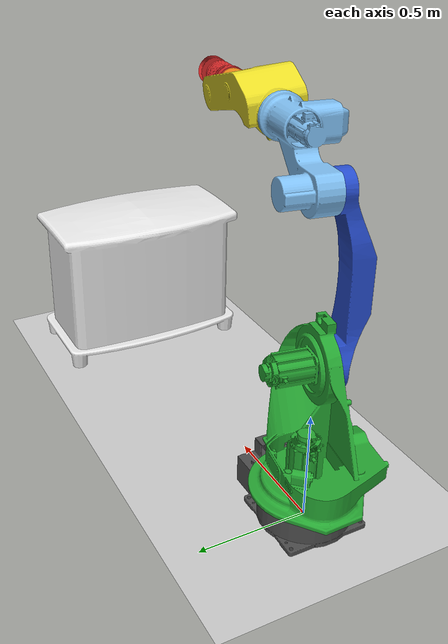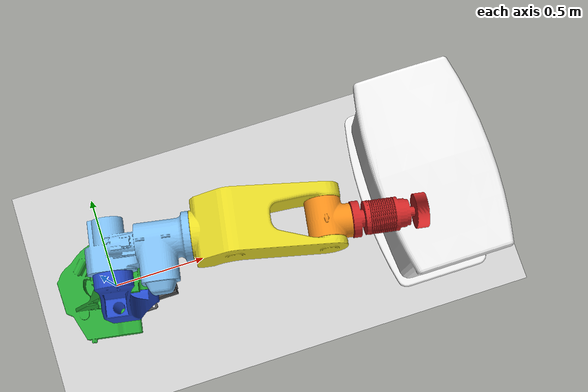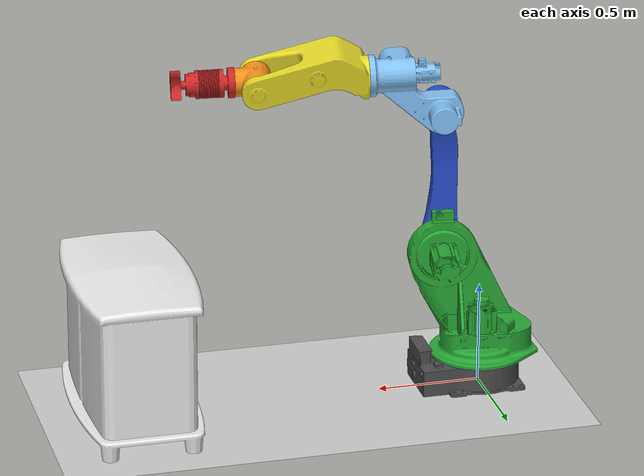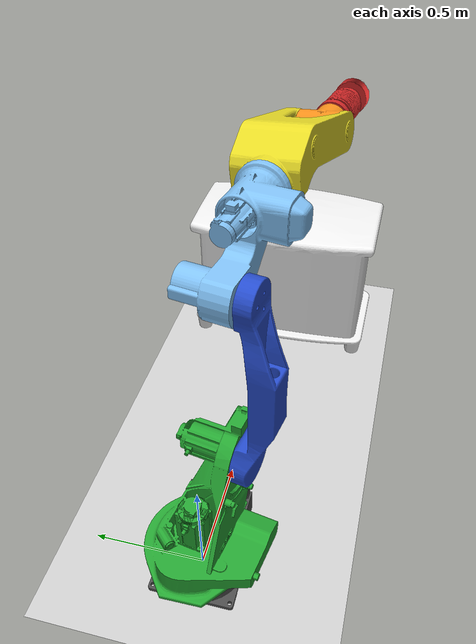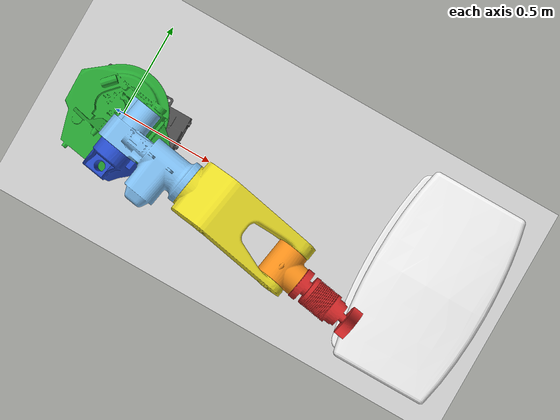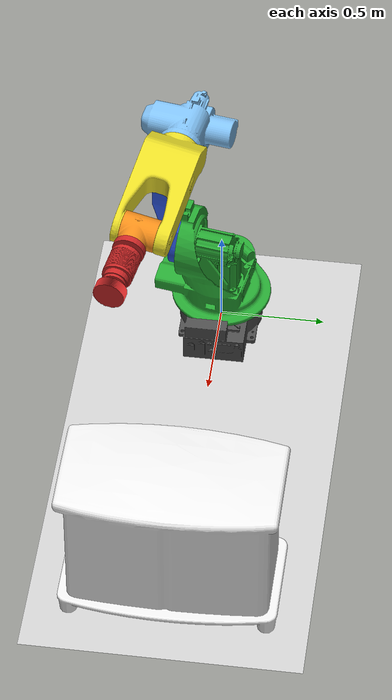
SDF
<sdf version="1.6">
 <world name="default">
  <light name="sun" type="directional">
   <pose>0 0 10 0 -0 0</pose>
   <diffuse>0.8 0.8 0.8 1</diffuse>
   <specular>0.2 0.2 0.2 1</specular>
   <attenuation>
    <range>1000</range>
    <constant>0.9</constant>
    <linear>0.01</linear>
    <quadratic>0.001</quadratic>
   </attenuation>
   <direction>-0.5 0.1 -0.9</direction>
  </light>
  <model name="ground_plane">
   <static>1</static>
   <link name="link">
    <collision name="collision">
     <geometry><plane><normal>0 0 1</normal><size>100 100</size></plane></geometry>
     <surface><friction><ode><mu>100</mu><mu2>50</mu2></ode></friction></surface>
    </collision>
    <visual name="visual">
     <cast_shadows>0</cast_shadows>
     <geometry><plane><normal>0 0 1</normal><size>100 100</size></plane></geometry>
     <material>
      <script><uri>file://media/materials/scripts/gazebo.material</uri><name>Gazebo/Grey</name></script>
     </material>
    </visual>
   </link>
  </model>
  <gravity>0 0 -9.8</gravity>
  <magnetic_field>6e-06 2.3e-05 -4.2e-05</magnetic_field>
  <atmosphere type="adiabatic"/>
  <physics name="default_physics" default="0" type="ode">
   <max_step_size>0.001</max_step_size>
   <real_time_factor>1</real_time_factor>
   <real_time_update_rate>1000</real_time_update_rate>
  </physics>
  <scene><ambient>0.4 0.4 0.4 1</ambient><background>0.7 0.7 0.7 1</background><shadows>1</shadows></scene>
  <audio><device>default</device></audio>
  <spherical_coordinates>
   <surface_model>EARTH_WGS84</surface_model>
   <latitude_deg>0</latitude_deg>
   <longitude_deg>0</longitude_deg>
   <elevation>0</elevation>
   <heading_deg>0</heading_deg>
  </spherical_coordinates>
  <model name="robot">
   <link name="00_link">
    <inertial>
     <pose>0.065195 -0.001111 0.082012 0 -0 0</pose>
     <mass>153</mass>
     <inertia>
      <ixx>1.9849</ixx>
      <ixy>0.00410476</ixy>
      <ixz>0.106688</ixz>
      <iyy>3.6118</iyy>
      <iyz>0.0107423</iyz>
      <izz>4.99307</izz>
     </inertia>
    </inertial>
    <collision name="00_link_collision">
     <geometry>
      <mesh><scale>1 1 1</scale><uri>/home/lindaqqiu/catkin_ws/src/m_mh24/m_mh24/meshes/base_link.STL</uri></mesh>
     </geometry>
    </collision>
    <visual name="00_link_visual">
     <geometry>
      <mesh><scale>1 1 1</scale><uri>/home/lindaqqiu/catkin_ws/src/m_mh24/m_mh24/meshes/base_link.STL</uri></mesh>
     </geometry>
     <material>
      <script><name>Gazebo/DarkGray</name><uri>file://media/materials/scripts/gazebo.material</uri></script>
     </material>
    </visual>
   </link>
   <joint name="world_base_joint" type="fixed"><child>00_link</child><parent>world</parent></joint>
   <link name="01_link">
    <pose>-0.00549 0.019704 0.62959 0 0 -0.16856</pose>
    <inertial>
     <pose>0.030829 -0.066527 -0.287659 0 -0 0</pose>
     <mass>211</mass>
     <inertia>
      <ixx>7.05702</ixx>
      <ixy>0.34612</ixy>
      <ixz>-2.07855</ixz>
      <iyy>8.19838</iyy>
      <iyz>0.617834</iyz>
      <izz>5.60235</izz>
     </inertia>
    </inertial>
    <collision name="01_link_collision">
     <geometry>
      <mesh><scale>1 1 1</scale><uri>/home/lindaqqiu/catkin_ws/src/m_mh24/m_mh24/meshes/01_link.STL</uri></mesh>
     </geometry>
    </collision>
    <visual name="01_link_visual">
     <geometry>
      <mesh><scale>1 1 1</scale><uri>/home/lindaqqiu/catkin_ws/src/m_mh24/m_mh24/meshes/01_link.STL</uri></mesh>
     </geometry>
     <material>
      <script><name>Gazebo/Green</name><uri>file://media/materials/scripts/gazebo.material</uri></script>
     </material>
    </visual>
    <kinematic>1</kinematic>
   </link>
   <joint name="s_joint" type="revolute">
    <child>01_link</child>
    <parent>00_link</parent>
    <axis>
     <xyz>0 0 1</xyz>
     <limit><lower>-3.14</lower><upper>3.14</upper><effort>1000</effort><velocity>3</velocity></limit>
     <dynamics>
      <damping>15</damping>
      <friction>1000</friction>
      <spring_reference>0</spring_reference>
      <spring_stiffness>0</spring_stiffness>
     </dynamics>
     <use_parent_model_frame>1</use_parent_model_frame>
    </axis>
   </joint>
   <link name="02_link">
    <pose>0.171318 -0.010384 0.62959 1.5708 -1.5425 -0.16856</pose>
    <inertial>
     <pose>0.30555 0.010888 0.19203 0 -0 0</pose>
     <mass>75</mass>
     <inertia>
      <ixx>0.28879</ixx>
      <ixy>-0.087944</ixy>
      <ixz>-0.13623</ixz>
      <iyy>4.632</iyy>
      <iyz>-0.023922</iyz>
      <izz>4.7157</izz>
     </inertia>
    </inertial>
    <collision name="02_link_collision">
     <geometry>
      <mesh><scale>1 1 1</scale><uri>/home/lindaqqiu/catkin_ws/src/m_mh24/m_mh24/meshes/02_link.STL</uri></mesh>
     </geometry>
    </collision>
    <visual name="02_link_visual">
     <geometry>
      <mesh><scale>1 1 1</scale><uri>/home/lindaqqiu/catkin_ws/src/m_mh24/m_mh24/meshes/02_link.STL</uri></mesh>
     </geometry>
     <material>
      <script><name>Gazebo/Blue</name><uri>file://media/materials/scripts/gazebo.material</uri></script>
     </material>
    </visual>
   </link>
   <joint name="l_joint" type="revolute">
    <child>02_link</child>
    <parent>01_link</parent>
    <axis>
     <xyz>-0.167759 -0.985828 -0</xyz>
     <limit><lower>-1.57</lower><upper>1.57</upper><effort>1000</effort><velocity>4</velocity></limit>
     <dynamics>
      <damping>150</damping>
      <friction>1000</friction>
      <spring_reference>0</spring_reference>
      <spring_stiffness>0</spring_stiffness>
     </dynamics>
     <use_parent_model_frame>1</use_parent_model_frame>
    </axis>
   </joint>
   <link name="03_link">
    <pose>0.192516 -0.013992 1.38929 1.5708 -1.53764 -0.168559</pose>
    <inertial>
     <pose>0.10481 -0.11408 0.08096 0 -0 0</pose>
     <mass>61</mass>
     <inertia>
      <ixx>0.84029</ixx>
      <ixy>0.41541</ixy>
      <ixz>-0.099597</ixz>
      <iyy>0.72625</iyy>
      <iyz>0.037172</iyz>
      <izz>1.1592</izz>
     </inertia>
    </inertial>
    <collision name="03_link_collision">
     <geometry>
      <mesh><scale>1 1 1</scale><uri>/home/lindaqqiu/catkin_ws/src/m_mh24/m_mh24/meshes/03_link.STL</uri></mesh>
     </geometry>
    </collision>
    <visual name="03_link_visual">
     <geometry>
      <mesh><scale>1 1 1</scale><uri>/home/lindaqqiu/catkin_ws/src/m_mh24/m_mh24/meshes/03_link.STL</uri></mesh>
     </geometry>
     <material>
      <script><name>Gazebo/SkyBlue</name><uri>file://media/materials/scripts/gazebo.material</uri></script>
     </material>
    </visual>
    <kinematic>1</kinematic>
   </link>
   <joint name="u_joint" type="revolute">
    <child>03_link</child>
    <parent>02_link</parent>
    <axis>
     <xyz>-0.167759 -0.985828 -0</xyz>
     <limit><lower>-1.57</lower><upper>1.57</upper><effort>1000</effort><velocity>5</velocity></limit>
     <dynamics>
      <damping>150</damping>
      <friction>1000</friction>
      <spring_reference>0</spring_reference>
      <spring_stiffness>0</spring_stiffness>
     </dynamics>
     <use_parent_model_frame>1</use_parent_model_frame>
    </axis>
   </joint>
   <link name="04_link">
    <pose>0.18949 -0.071296 1.58918 -1.84849 1.44954 -2.01511</pose>
    <inertial>
     <pose>-0.040037 0.001829 0.546518 0 -0 0</pose>
     <mass>30</mass>
     <inertia><ixx>0.78</ixx><ixy>0</ixy><ixz>-0.03</ixz><iyy>0.78</iyy><iyz>0</iyz><izz>0.22</izz></inertia>
    </inertial>
    <collision name="04_link_collision">
     <geometry>
      <mesh><scale>1 1 1</scale><uri>/home/lindaqqiu/catkin_ws/src/m_mh24/m_mh24/meshes/04_link.STL</uri></mesh>
     </geometry>
    </collision>
    <visual name="04_link_visual">
     <geometry>
      <mesh><scale>1 1 1</scale><uri>/home/lindaqqiu/catkin_ws/src/m_mh24/m_mh24/meshes/04_link.STL</uri></mesh>
     </geometry>
     <material>
      <script><name>Gazebo/Yellow</name><uri>file://media/materials/scripts/gazebo.material</uri></script>
     </material>
    </visual>
    <kinematic>1</kinematic>
   </link>
   <joint name="r_joint" type="revolute">
    <child>04_link</child>
    <parent>03_link</parent>
    <axis>
     <xyz>0.985286 -0.167663 -0.033159</xyz>
     <limit><lower>-3.14</lower><upper>3.14</upper><effort>1000</effort><velocity>5</velocity></limit>
     <dynamics>
      <damping>150</damping>
      <friction>1000</friction>
      <spring_reference>0</spring_reference>
      <spring_stiffness>0</spring_stiffness>
     </dynamics>
     <use_parent_model_frame>1</use_parent_model_frame>
    </axis>
   </joint>
   <link name="05_link">
    <pose>1.0546 -0.21851 1.55564 0.24643 -1.45057 1.15798</pose>
    <inertial>
     <pose>8e-06 -0.030093 -0.006477 0 -0 0</pose>
     <mass>15</mass>
     <inertia>
      <ixx>0.027316</ixx>
      <ixy>6.5034e-06</ixy>
      <ixz>2.0266e-05</ixz>
      <iyy>0.028339</iyy>
      <iyz>0.00032343</iyz>
      <izz>0.037473</izz>
     </inertia>
    </inertial>
    <collision name="05_link_collision">
     <geometry>
      <mesh><scale>1 1 1</scale><uri>/home/lindaqqiu/catkin_ws/src/m_mh24/m_mh24/meshes/05_link.STL</uri></mesh>
     </geometry>
    </collision>
    <visual name="05_link_visual">
     <geometry>
      <mesh><scale>1 1 1</scale><uri>/home/lindaqqiu/catkin_ws/src/m_mh24/m_mh24/meshes/05_link.STL</uri></mesh>
     </geometry>
     <material>
      <script><name>Gazebo/Orange</name><uri>file://media/materials/scripts/gazebo.material</uri></script>
     </material>
    </visual>
    <kinematic>1</kinematic>
   </link>
   <joint name="b_joint" type="revolute">
    <child>05_link</child>
    <parent>04_link</parent>
    <axis>
     <xyz>-0.162815 -0.979777 0.116314</xyz>
     <limit><lower>-1.57</lower><upper>1.57</upper><effort>1000</effort><velocity>5</velocity></limit>
     <dynamics>
      <damping>150</damping>
      <friction>1000</friction>
      <spring_reference>0</spring_reference>
      <spring_stiffness>0</spring_stiffness>
     </dynamics>
     <use_parent_model_frame>1</use_parent_model_frame>
    </axis>
   </joint>
   <link name="06_link">
    <pose>1.05099 -0.240276 1.55822 -1.60025 -0.116574 -1.73547</pose>
    <inertial>
     <pose>-1.6e-05 3.2e-05 0.27545 0 -0 0</pose>
     <mass>5</mass>
     <inertia>
      <ixx>0.15671</ixx>
      <ixy>2.9611e-07</ixy>
      <ixz>-3.1275e-05</ixz>
      <iyy>0.1567</iyy>
      <iyz>2.6481e-05</iyz>
      <izz>0.042049</izz>
     </inertia>
    </inertial>
    <collision name="06_link_collision">
     <geometry>
      <mesh><scale>1 1 1</scale><uri>/home/lindaqqiu/catkin_ws/src/m_mh24/m_mh24/meshes/06_link.STL</uri></mesh>
     </geometry>
    </collision>
    <visual name="06_link_visual">
     <geometry>
      <mesh><scale>1 1 1</scale><uri>/home/lindaqqiu/catkin_ws/src/m_mh24/m_mh24/meshes/06_link.STL</uri></mesh>
     </geometry>
     <material>
      <script><name>Gazebo/Red</name><uri>file://media/materials/scripts/gazebo.material</uri></script>
     </material>
    </visual>
    <kinematic>1</kinematic>
   </link>
   <joint name="t_joint" type="revolute">
    <child>06_link</child>
    <parent>05_link</parent>
    <axis>
     <xyz>0.985483 -0.167236 -0.029254</xyz>
     <limit><lower>-1e+16</lower><upper>1e+16</upper></limit>
     <dynamics>
      <damping>150</damping>
      <friction>1000</friction>
      <spring_reference>0</spring_reference>
      <spring_stiffness>0</spring_stiffness>
     </dynamics>
     <use_parent_model_frame>1</use_parent_model_frame>
    </axis>
   </joint>
   <static>0</static>
   <plugin name="gazebo_ros_control" filename="libgazebo_ros_control.so">
    <robotNamespace>/m_mh24</robotNamespace>
    <robotSimType>gazebo_ros_control/DefaultRobotHWSim</robotSimType>
   </plugin>
   <pose>-1.2e-05 4.2e-05 -6e-06 -3.5e-05 4e-06 -9.7e-05</pose>
  </model>
  <model name="workpiece">
   <link name="workpiece">
    <inertial>
     <pose>0 0.5 0 0 -0 0</pose>
     <mass>500</mass>
     <inertia><ixx>1</ixx><ixy>0</ixy><ixz>0</ixz><iyy>1</iyy><iyz>0</iyz><izz>1</izz></inertia>
    </inertial>
    <collision name="workpiece_collision">
     <pose>0 -0.5 0 0 -0 1.57</pose>
     <geometry>
      <mesh><scale>1 1 1</scale><uri>/home/lindaqqiu/catkin_ws/src/m_mh24/m_mh24/meshes/drawer.STL</uri></mesh>
     </geometry>
    </collision>
    <visual name="workpiece_visual">
     <pose>0 -0.5 0 0 -0 1.57</pose>
     <geometry>
      <mesh><scale>1 1 1</scale><uri>/home/lindaqqiu/catkin_ws/src/m_mh24/m_mh24/meshes/drawer.STL</uri></mesh>
     </geometry>
     <material>
      <script><name>Gazebo/White</name><uri>file://media/materials/scripts/gazebo.material</uri></script>
     </material>
    </visual>
   </link>
   <joint name="world_workbench_joint" type="fixed"><child>workpiece</child><parent>world</parent></joint>
   <pose>2.1 0 0 0 -0 0</pose>
  </model>
 </world>
</sdf>
